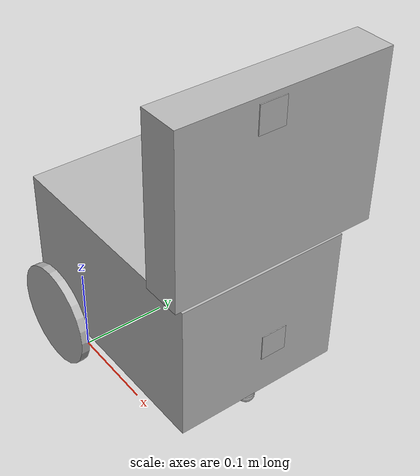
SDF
<?xml version='1.0'?>
<sdf version='1.6'>
  <model name="Plantroid">
    <static>false</static>
    <link name='chassis'>
      <pose>0 0 .015 0 0 0</pose>
      <mass>5</mass>
      <inertial>
        <pose>0.045 0.1 .0825 0 0 0</pose>
        <mass>5</mass>
        <inertia>
          <ixx>0.008484</ixx>
          <iyy>0.04286</iyy>
          <izz>0.10501</izz>
        </inertia>
      </inertial>
      <collision name='collision'>
        <pose>0.045 0.1 .0825 0 0 0</pose>
        <geometry>
          <box>
            <size>.275 .42 0.165 </size>
          </box>
        </geometry>
      </collision>

      <visual name='visual'>
        <pose>0.045 0.1 .0825 0 0 0</pose>
          <geometry>
            <box>
              <size>.275 .2 0.165 </size>
            </box>
          </geometry>
      </visual>

      <collision name='caster_collision'>
        <pose>0.16 0.1025 -.025 0 0 0</pose>
        <geometry>
          <sphere>
            <radius>.01</radius>
          </sphere>
        </geometry>

        <surface>
          <friction>
            <ode>
            <mu>0</mu>
            <mu2>0</mu2>
            <slip1>0.0</slip1>
            <slip2>0.0</slip2>
          </ode>
          </friction>
        </surface>
      </collision>

      <visual name='caster_visual_cylinder'>
        <pose>0.16 0.1025 -.0125 0 0 0</pose>
        <geometry>
          <cylinder>
            <radius>.01</radius>
            <length>.02</length>
          </cylinder>
        </geometry>
      </visual>

      <visual name='caster_visual_ball'>
        <pose>0.16 0.1025 -.025 0 0 0</pose>
        <geometry>
          <sphere>
            <radius>.01</radius>
          </sphere>
        </geometry>
      </visual>
    </link>

    <link name="left_wheel">
      <pose>-0.024 0.225 0.041 0 1.5707 1.5707</pose>
      <collision name="collision">
        <geometry>
          <cylinder>
            <radius>.06</radius>
            <length>.01</length>
          </cylinder>
        </geometry>
      </collision>
      <visual name='visual'>
        <pose>0 0 0 0 0 0</pose>
        <geometry>
          <cylinder>
            <radius>.06</radius>
            <length>.01</length>
          </cylinder>
        </geometry>
      </visual>
      <inertial>
        <mass>0.2</mass>
        <inertia>
          <ixx>0.0001</ixx>
          <iyy>0.0001</iyy>
          <izz>0.00005</izz>
        </inertia>
      </inertial>
      <surface>
        <friction>
          <ode>
            <mu>1.0</mu>
            <mu2>1.0</mu2>
          </ode>
        </friction>
        <contact>
          <ode>
            <min_depth>0.003</min_depth>
          </ode>
        </contact>
      </surface>
    </link>

    <link name="right_wheel">
      <pose>-0.024 -.0225 0.041 0 1.5707 1.5707</pose>
      <collision name="collision">
        <geometry>
          <cylinder>
            <radius>.06</radius>
            <length>.01</length>
          </cylinder>
        </geometry>
      </collision>
      <visual name='visual'>
        <pose>0 0 0 0 0 0</pose>
        <geometry>
          <cylinder>
            <radius>.06</radius>
            <length>.01</length>
          </cylinder>
        </geometry>
      </visual>
      <inertial>
        <mass>0.2</mass>
        <inertia>
          <ixx>0.0001</ixx>
          <iyy>0.0001</iyy>
          <izz>0.00005</izz>
        </inertia>
      </inertial>
            <surface>
        <friction>
          <ode>
            <mu>1.0</mu>
            <mu2>1.0</mu2>
          </ode>
        </friction>
        <contact>
          <ode>
            <min_depth>0.003</min_depth>
          </ode>
        </contact>
      </surface>
    </link>

    <link name="head">
      <pose>0.175 .10 0.295 0 0 0</pose>
      <collision name="collision">
        <geometry>
          <box>
            <size>0.045 0.2375 0.19</size>
          </box>
        </geometry>
      </collision>
      <visual name='visual'>
        <pose>0 0 0 0 0 0</pose>
        <geometry>
          <box>
            <size>0.045 0.2375 0.19</size>
          </box>
        </geometry>
      </visual>
    </link>

    <joint type="revolute" name="left_wheel_hinge">
      <pose>0 0 0 0 0 0</pose>
      <child>left_wheel</child>
      <parent>chassis</parent>
      <axis>
        <xyz>0 0 1</xyz>
      </axis>
    </joint>

    <joint type="revolute" name="right_wheel_hinge">
      <pose>0 0 0 0 0 0</pose>
      <child>right_wheel</child>
      <parent>chassis</parent>
      <axis>
        <xyz>0 0 1</xyz>
      </axis>
    </joint>

    <joint type="fixed" name="head_hinge">
      <pose>0 0 0 0 0 0</pose>
      <child>head</child>
      <parent>chassis</parent>
      <axis>
        <xyz>0 0 0</xyz>
      </axis>
    </joint>

    <plugin name="Plantroid_diff_drive" filename="libgazebo_ros_diff_drive.so">

      <ros>
      </ros>

      <updateRate>30</updateRate>

      <!-- wheels -->
      <leftJoint>left_wheel_hinge</leftJoint>
      <rightJoint>right_wheel_hinge</rightJoint>

      <!-- kinematics -->
      <wheelSeparation>0.160</wheelSeparation>
      <wheelDiameter>0.045</wheelDiameter>

      <!-- limits -->
      <maxWheelTorque>1</maxWheelTorque>
      <maxWheelAcceleration>0.1</maxWheelAcceleration>

      <commandTopic>cmd_vel</commandTopic>

      <!-- output -->
      <publishOdom>true</publishOdom>
      <publishOdomTF>true</publishOdomTF>
      <publishWheelTF>false</publishWheelTF>

      <odometryTopic>odom</odometryTopic>
      <odometryFrame>odom</odometryFrame>
      <robotBaseFrame>base_footprint</robotBaseFrame>
    </plugin>

    <plugin name="Plantroid_joint_state" filename="libgazebo_ros_joint_state_publisher.so">
      <ros>
        <remapping>~/out:=joint_states</remapping>
      </ros>
      <update_rate>30</update_rate>
      <joint_name>left_wheel_hinge</joint_name>
      <joint_name>right_wheel_hinge</joint_name>
      <joint_name>head_hinge</joint_name>
    </plugin>

    <link name="OKAO_Vision_link">
      <pose>0.2 0.08 0.37 0 0 0</pose>
      <inertial>
        <mass>0.000000001</mass>
        <inertia>
          <ixx>0.000166667</ixx>
          <iyy>0.000166667</iyy>
          <izz>0.000166667</izz>
        </inertia>
      </inertial>
      <collision name="collision">
        <geometry>
          <box>
            <size>0.001 0.03 0.03</size>
          </box>
        </geometry>
      </collision>
      <visual name="visual">
        <geometry>
          <box>
            <size>0.001 0.03 0.03</size>
          </box>
        </geometry>
      </visual>
      <sensor name="camera" type="camera">
        <camera>
          <horizontal_fov>0.8726646259971648</horizontal_fov>
          <image>
            <width>240</width>
            <height>320</height>
          </image>
          <clip>
            <near>0.1</near>
            <far>100</far>
          </clip>
        </camera>
        <always_on>1</always_on>
        <update_rate>30</update_rate>
        <visualize>false</visualize>
        <plugin name="camera_controller" filename="libgazebo_ros_camera.so">
          <alwaysOn>true</alwaysOn>
          <updateRate>0.0</updateRate>
          <cameraName>camera</cameraName>
          <imageTopicName>image_raw</imageTopicName>
          <cameraInfoTopicName>camera_info</cameraInfoTopicName>
          <frameName>camera_link_optical</frameName>
          <!-- setting hackBaseline to anything but 0.0 will cause a misalignment
                   between the gazebo sensor image and the frame it is supposed to
                   be attached to -->
          <hackBaseline>0.0</hackBaseline>
          <distortionK1>0.0</distortionK1>
          <distortionK2>0.0</distortionK2>
          <distortionK3>0.0</distortionK3>
          <distortionT1>0.0</distortionT1>
          <distortionT2>0.0</distortionT2>
          <CxPrime>0</CxPrime>
          <Cx>0.0</Cx>
          <Cy>0.0</Cy>
          <focalLength>0.0</focalLength>
        </plugin>
      </sensor>

    </link>

    <joint type="fixed" name="camera_joint">
      <pose>0 0 0 0 0 0</pose>
      <child>OKAO_Vision_link</child>
      <parent>head</parent>
      <axis>
        <xyz>0 1 0</xyz>
      </axis>
    </joint>

      <link name="plantroid_lidar">
      <pose>0.2 0.1 0.1 0 0 0</pose>
      <inertial>
        <mass>0.000000001</mass>
        <inertia>
          <ixx>0.000166667</ixx>
          <iyy>0.000166667</iyy>
          <izz>0.000166667</izz>
        </inertia>
      </inertial>
      <visual name="visual">
        <geometry>
          <box>
            <size>0.001 0.03 0.03</size>
          </box>
        </geometry>
      </visual>

      <sensor type="ray" name="head_hokuyo_sensor">
      <pose>0 0 0 0 0 0</pose>
      <visualize>true</visualize>
      <update_rate>30</update_rate>
      <ray>
        <scan>
          <horizontal>
            <samples>30</samples>
            <resolution>1</resolution>
            <min_angle>-0.43633</min_angle>
            <max_angle>0.43633</max_angle>
          </horizontal>
        </scan>
        <range>
          <min>0.01</min>
          <max>2.0</max>
          <resolution>0.01</resolution>
        </range>
        <noise>
          <type>gaussian</type>
          <mean>0.0</mean>
          <stddev>0.01</stddev>
        </noise>
      </ray>
      <plugin name="gazebo_ros_head_hokuyo_controller" filename="libgazebo_ros_laser.so">
        <topicName>/Plantroid/laser/scan</topicName>
        <frameName>plantroid_lidar</frameName>
      </plugin>
    </sensor>
    </link>

  <joint name="hokuyo_joint" type ="fixed">
      <pose>0 0 0 0 0 0</pose>
      <child>plantroid_lidar</child>
      <parent>chassis</parent>
      <axis>
        <xyz>0 1 0</xyz>
      </axis>
  </joint>

  </model>
</sdf>
